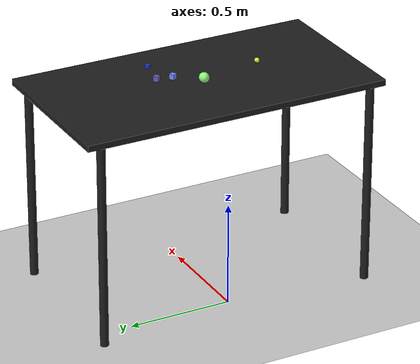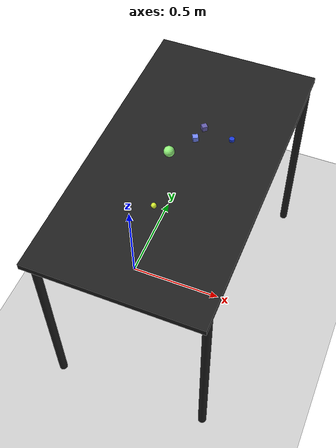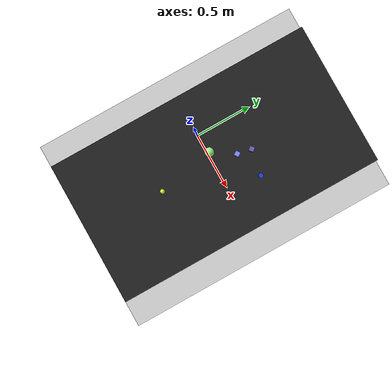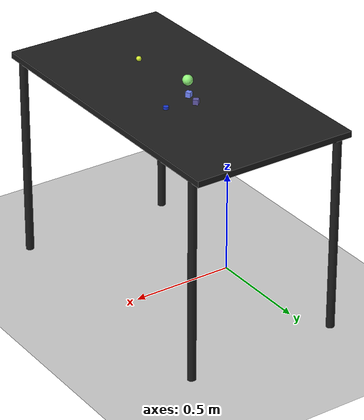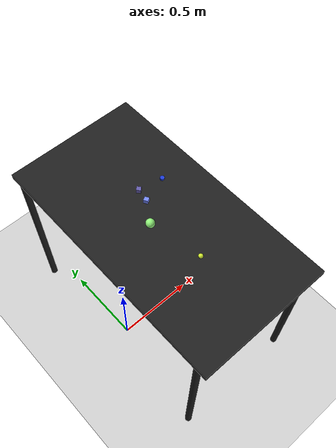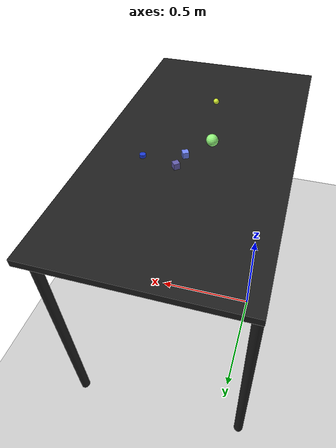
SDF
<?xml version="1.0" ?>
<sdf version="1.6">
  <world name="arm_world">
    <plugin filename="gz-sim-physics-system" name="gz::sim::systems::Physics">
      <engine>
        <filename>libgz-physics-bullet-featherstone-plugin.so</filename>
      </engine>
    </plugin>
    <plugin filename="gz-sim-user-commands-system" name="gz::sim::systems::UserCommands"/>
    <plugin filename="gz-sim-scene-broadcaster-system" name="gz::sim::systems::SceneBroadcaster"/>
    <plugin filename="gz-sim-sensors-system" name="gz::sim::systems::Sensors">
      <render_engine>ogre2</render_engine>
    </plugin>
    <gravity>0.0 0.0 -9.8</gravity>
    <scene>
      <shadows>false</shadows>
    </scene>
    <gui>
      <camera name="user_camera">
        <pose>0.75 -0.75 1.4 0 0.29 2.21</pose>
      </camera>
    </gui>
    <include>
      <uri>https://fuel.gazebosim.org/1.0/OpenRobotics/models/Sun</uri>
    </include>
    <model name="table">
      <static>true</static>
      <include>
        <uri>model://table</uri>
      </include>
      <pose>0.29 0 0 0 0 1.5708</pose>
    </model>
    <model name="ground_plane">
      <static>true</static>
      <link name="link">
        <collision name="collision">
          <geometry>
            <plane>
              <normal>0 0 1</normal>
            </plane>
          </geometry>
          <surface>
            <friction>
              <ode>
                <mu>1.0</mu>
                <mu2>1.0</mu2>
              </ode>
            </friction>
          </surface>
        </collision>
        <visual name="visual">
          <geometry>
            <plane>
              <normal>0 0 1</normal>
              <size>100 100</size>
            </plane>
          </geometry>
          <material>
            <ambient>0.8 0.8 0.8 1</ambient>
            <diffuse>0.8 0.8 0.8 1</diffuse>
            <specular>0.8 0.8 0.8 1</specular>
          </material>
        </visual>
      </link>
    </model>
    <model name="cylinder_s_0">
      <pose>0.46 0.175 1.05 0 0 4.81</pose>
      <link name="cylinder_s_0_link">
        <inertial>
          <mass>0.05</mass>
          <inertia>
            <ixx>2.04e-7</ixx>
            <iyy>2.04e-7</iyy>
            <izz>3.9e-8</izz>
            <ixy>0</ixy>
            <ixz>0</ixz>
            <iyz>0</iyz>
          </inertia>
        </inertial>
        <collision name="cylinder_s_0_collision">
          <geometry>
            <cylinder>
              <radius>0.0125</radius>
              <length>0.0125</length>
            </cylinder>
          </geometry>
          <surface>
            <friction>
              <ode>
                <mu>0.8</mu>
                <mu2>0.8</mu2>
                <fdir1>0 0 1</fdir1>
                <slip1>0.001</slip1>
                <slip2>0.001</slip2>
              </ode>
              <torsional>
                <coefficient>0.1</coefficient>
                <surface_radius>0.015</surface_radius>
                <use_patch_radius>true</use_patch_radius>
              </torsional>
            </friction>
            <contact>
              <ode>
                <kp>1e5</kp>
                <kd>10</kd>
                <max_vel>0.1</max_vel>
                <min_depth>0.001</min_depth>
                <soft_cfm>0.01</soft_cfm>
                <soft_erp>0.2</soft_erp>
              </ode>
            </contact>
            <bounce>
              <restitution_coefficient>0.2</restitution_coefficient>
              <threshold>0.01</threshold>
            </bounce>
          </surface>
        </collision>
        <visual name="cylinder_s_0_visual">
          <geometry>
            <cylinder>
              <radius>0.0125</radius>
              <length>0.0125</length>
            </cylinder>
          </geometry>
          <material>
            <ambient>0.11 0.23 0.84 1</ambient>
            <diffuse>0.11 0.23 0.84 1</diffuse>
          </material>
        </visual>
        <velocity_decay>
          <linear>1</linear>
          <angular>1</angular>
        </velocity_decay>
      </link>
    </model>
    <model name="cube_s_1">
      <pose>0.319 0.2 1.05 0 0 2.28</pose>
      <link name="cube_s_1_link">
        <inertial>
          <mass>0.05</mass>
          <inertia>
            <ixx>2.04e-7</ixx>
            <iyy>2.04e-7</iyy>
            <izz>3.9e-8</izz>
            <ixy>0</ixy>
            <ixz>0</ixz>
            <iyz>0</iyz>
          </inertia>
        </inertial>
        <collision name="cube_s_1_collision">
          <geometry>
            <box>
              <size>0.025 0.025 0.025</size>
            </box>
          </geometry>
          <surface>
            <friction>
              <ode>
                <mu>0.8</mu>
                <mu2>0.8</mu2>
                <fdir1>0 0 1</fdir1>
                <slip1>0.001</slip1>
                <slip2>0.001</slip2>
              </ode>
              <torsional>
                <coefficient>0.1</coefficient>
                <surface_radius>0.015</surface_radius>
                <use_patch_radius>true</use_patch_radius>
              </torsional>
            </friction>
            <contact>
              <ode>
                <kp>1e5</kp>
                <kd>10</kd>
                <max_vel>0.1</max_vel>
                <min_depth>0.001</min_depth>
                <soft_cfm>0.01</soft_cfm>
                <soft_erp>0.2</soft_erp>
              </ode>
            </contact>
            <bounce>
              <restitution_coefficient>0.2</restitution_coefficient>
              <threshold>0.01</threshold>
            </bounce>
          </surface>
        </collision>
        <visual name="cube_s_1_visual">
          <geometry>
            <box>
              <size>0.025 0.025 0.025</size>
            </box>
          </geometry>
          <material>
            <ambient>0.39 0.36 0.67 1</ambient>
            <diffuse>0.39 0.36 0.67 1</diffuse>
          </material>
        </visual>
        <velocity_decay>
          <linear>1</linear>
          <angular>1</angular>
        </velocity_decay>
      </link>
    </model>
    <model name="cube_s_2">
      <pose>0.305 0.124 1.05 0 0 3.66</pose>
      <link name="cube_s_2_link">
        <inertial>
          <mass>0.05</mass>
          <inertia>
            <ixx>2.04e-7</ixx>
            <iyy>2.04e-7</iyy>
            <izz>3.9e-8</izz>
            <ixy>0</ixy>
            <ixz>0</ixz>
            <iyz>0</iyz>
          </inertia>
        </inertial>
        <collision name="cube_s_2_collision">
          <geometry>
            <box>
              <size>0.025 0.025 0.025</size>
            </box>
          </geometry>
          <surface>
            <friction>
              <ode>
                <mu>0.8</mu>
                <mu2>0.8</mu2>
                <fdir1>0 0 1</fdir1>
                <slip1>0.001</slip1>
                <slip2>0.001</slip2>
              </ode>
              <torsional>
                <coefficient>0.1</coefficient>
                <surface_radius>0.015</surface_radius>
                <use_patch_radius>true</use_patch_radius>
              </torsional>
            </friction>
            <contact>
              <ode>
                <kp>1e5</kp>
                <kd>10</kd>
                <max_vel>0.1</max_vel>
                <min_depth>0.001</min_depth>
                <soft_cfm>0.01</soft_cfm>
                <soft_erp>0.2</soft_erp>
              </ode>
            </contact>
            <bounce>
              <restitution_coefficient>0.2</restitution_coefficient>
              <threshold>0.01</threshold>
            </bounce>
          </surface>
        </collision>
        <visual name="cube_s_2_visual">
          <geometry>
            <box>
              <size>0.025 0.025 0.025</size>
            </box>
          </geometry>
          <material>
            <ambient>0.45 0.53 0.99 1</ambient>
            <diffuse>0.45 0.53 0.99 1</diffuse>
          </material>
        </visual>
        <velocity_decay>
          <linear>1</linear>
          <angular>1</angular>
        </velocity_decay>
      </link>
    </model>
    <model name="sphere_m_3">
      <pose>0.228 0.005 1.05 0 0 3.69</pose>
      <link name="sphere_m_3_link">
        <inertial>
          <mass>0.05</mass>
          <inertia>
            <ixx>2.04e-7</ixx>
            <iyy>2.04e-7</iyy>
            <izz>3.9e-8</izz>
            <ixy>0</ixy>
            <ixz>0</ixz>
            <iyz>0</iyz>
          </inertia>
        </inertial>
        <collision name="sphere_m_3_collision">
          <geometry>
            <sphere>
              <radius>0.025</radius>
            </sphere>
          </geometry>
          <surface>
            <friction>
              <ode>
                <mu>0.8</mu>
                <mu2>0.8</mu2>
                <fdir1>0 0 1</fdir1>
                <slip1>0.001</slip1>
                <slip2>0.001</slip2>
              </ode>
              <torsional>
                <coefficient>0.1</coefficient>
                <surface_radius>0.015</surface_radius>
                <use_patch_radius>true</use_patch_radius>
              </torsional>
            </friction>
            <contact>
              <ode>
                <kp>1e5</kp>
                <kd>10</kd>
                <max_vel>0.1</max_vel>
                <min_depth>0.001</min_depth>
                <soft_cfm>0.01</soft_cfm>
                <soft_erp>0.2</soft_erp>
              </ode>
            </contact>
            <bounce>
              <restitution_coefficient>0.2</restitution_coefficient>
              <threshold>0.01</threshold>
            </bounce>
          </surface>
        </collision>
        <visual name="sphere_m_3_visual">
          <geometry>
            <sphere>
              <radius>0.025</radius>
            </sphere>
          </geometry>
          <material>
            <ambient>0.57 0.96 0.48 1</ambient>
            <diffuse>0.57 0.96 0.48 1</diffuse>
          </material>
        </visual>
        <velocity_decay>
          <linear>1</linear>
          <angular>1</angular>
        </velocity_decay>
      </link>
    </model>
    <model name="sphere_s_4">
      <pose>0.286 -0.3 1.05 0 0 0.66</pose>
      <link name="sphere_s_4_link">
        <inertial>
          <mass>0.05</mass>
          <inertia>
            <ixx>2.04e-7</ixx>
            <iyy>2.04e-7</iyy>
            <izz>3.9e-8</izz>
            <ixy>0</ixy>
            <ixz>0</ixz>
            <iyz>0</iyz>
          </inertia>
        </inertial>
        <collision name="sphere_s_4_collision">
          <geometry>
            <sphere>
              <radius>0.0125</radius>
            </sphere>
          </geometry>
          <surface>
            <friction>
              <ode>
                <mu>0.8</mu>
                <mu2>0.8</mu2>
                <fdir1>0 0 1</fdir1>
                <slip1>0.001</slip1>
                <slip2>0.001</slip2>
              </ode>
              <torsional>
                <coefficient>0.1</coefficient>
                <surface_radius>0.015</surface_radius>
                <use_patch_radius>true</use_patch_radius>
              </torsional>
            </friction>
            <contact>
              <ode>
                <kp>1e5</kp>
                <kd>10</kd>
                <max_vel>0.1</max_vel>
                <min_depth>0.001</min_depth>
                <soft_cfm>0.01</soft_cfm>
                <soft_erp>0.2</soft_erp>
              </ode>
            </contact>
            <bounce>
              <restitution_coefficient>0.2</restitution_coefficient>
              <threshold>0.01</threshold>
            </bounce>
          </surface>
        </collision>
        <visual name="sphere_s_4_visual">
          <geometry>
            <sphere>
              <radius>0.0125</radius>
            </sphere>
          </geometry>
          <material>
            <ambient>0.84 0.94 0.19 1</ambient>
            <diffuse>0.84 0.94 0.19 1</diffuse>
          </material>
        </visual>
        <velocity_decay>
          <linear>1</linear>
          <angular>1</angular>
        </velocity_decay>
      </link>
    </model>
  </world>
</sdf>

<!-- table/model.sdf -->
<sdf version="1.5">
  <model name="table">
    <static>true</static>
    <link name="link">
      <collision name="surface">
        <pose>0 0 1.0 0 0 0</pose>
        <geometry>
          <box>
            <size>1.5 0.8 0.03</size>
          </box>
        </geometry>
        <surface>
          <friction>
            <ode>
              <mu>0.6</mu>
              <mu2>0.6</mu2>
            </ode>
          </friction>
        </surface>
      </collision>
      <visual name="surface">
        <pose>0 0 1.0 0 0 0</pose>
        <geometry>
          <box>
            <size>1.5 0.8 0.03</size>
          </box>
        </geometry>
        <material>
          <script>
            <uri>file://media/materials/scripts/gazebo.material</uri>
            <name>Gazebo/Black</name>
          </script>
        </material>
      </visual>
      <collision name="front_left_leg">
        <pose>0.68 0.38 0.5 0 0 0</pose>
        <geometry>
          <cylinder>
            <radius>0.02</radius>
            <length>1.0</length>
          </cylinder>
        </geometry>
      </collision>
      <visual name="front_left_leg">
        <pose>0.68 0.38 0.5 0 0 0</pose>
        <geometry>
          <cylinder>
            <radius>0.02</radius>
            <length>1.0</length>
          </cylinder>
        </geometry>
        <material>
          <script>
            <uri>file://media/materials/scripts/gazebo.material</uri>
            <name>Gazebo/Black</name>
          </script>
        </material>
      </visual>
      <collision name="front_right_leg">
        <pose>0.68 -0.38 0.5 0 0 0</pose>
        <geometry>
          <cylinder>
            <radius>0.02</radius>
            <length>1.0</length>
          </cylinder>
        </geometry>
      </collision>
      <visual name="front_right_leg">
        <pose>0.68 -0.38 0.5 0 0 0</pose>
        <geometry>
          <cylinder>
            <radius>0.02</radius>
            <length>1.0</length>
          </cylinder>
        </geometry>
        <material>
          <script>
            <uri>file://media/materials/scripts/gazebo.material</uri>
            <name>Gazebo/Black</name>
          </script>
        </material>
      </visual>
      <collision name="back_right_leg">
        <pose>-0.68 -0.38 0.5 0 0 0</pose>
        <geometry>
          <cylinder>
            <radius>0.02</radius>
            <length>1.0</length>
          </cylinder>
        </geometry>
      </collision>
      <visual name="back_right_leg">
        <pose>-0.68 -0.38 0.5 0 0 0</pose>
        <geometry>
          <cylinder>
            <radius>0.02</radius>
            <length>1.0</length>
          </cylinder>
        </geometry>
        <material>
          <script>
            <uri>file://media/materials/scripts/gazebo.material</uri>
            <name>Gazebo/Black</name>
          </script>
        </material>
      </visual>
      <collision name="back_left_leg">
        <pose>-0.68 0.38 0.5 0 0 0</pose>
        <geometry>
          <cylinder>
            <radius>0.02</radius>
            <length>1.0</length>
          </cylinder>
        </geometry>
      </collision>
      <visual name="back_left_leg">
        <pose>-0.68 0.38 0.5 0 0 0</pose>
        <geometry>
          <cylinder>
            <radius>0.02</radius>
            <length>1.0</length>
          </cylinder>
        </geometry>
        <material>
          <script>
            <uri>file://media/materials/scripts/gazebo.material</uri>
            <name>Gazebo/Black</name>
          </script>
        </material>
      </visual>
    </link>
  </model>
</sdf>
